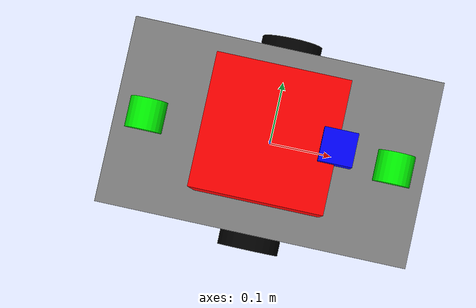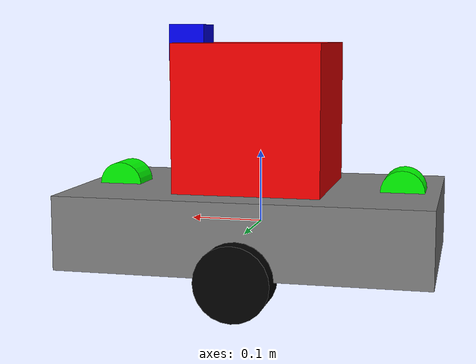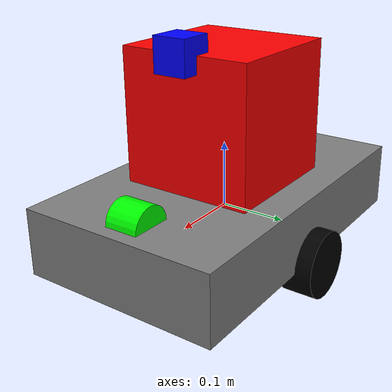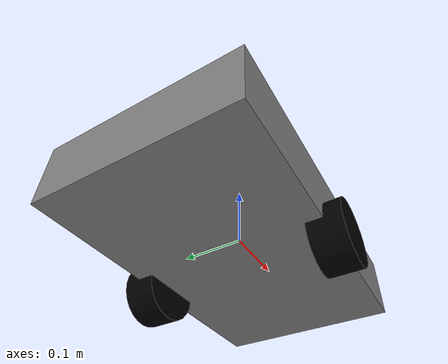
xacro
<?xml version="1.0"?>
<robot xmlns:xacro="http://ros.org/wiki/xacro" name="my_robot">

  <!-- ===================== MATERIALIEN ===================== -->
  <material name="grey">
    <color rgba="0.5 0.5 0.5 1"/>
  </material>

  <material name="blue">
    <color rgba="0 0 1 1"/>
  </material>

  <material name="green">
    <color rgba="0 1 0 1"/>
  </material>

  <material name="black">
    <color rgba="0 0 0 1"/>
  </material>

  <material name="red">
    <color rgba="1 0 0 1"/>
  </material>

  <!-- ===================== BASIS ===================== -->
  <link name="base_link">
    <visual>
      <geometry>
        <box size="0.5 0.3 0.1"/>
      </geometry>
      <material name="grey"/>
    </visual>
    <collision>
      <geometry>
        <box size="0.5 0.3 0.1"/>
      </geometry>
    </collision>
  </link>

  <!-- ===================== TESTBOX ===================== -->
  <link name="test_box_link">
    <visual>
      <geometry>
        <box size="0.2 0.2 0.2"/>
      </geometry>
      <material name="red"/>
    </visual>
  </link>

  <joint name="base_to_test_box" type="fixed">
    <parent link="base_link"/>
    <child link="test_box_link"/>
    <origin xyz="0 0 0.15" rpy="0 0 0"/>
  </joint>

  <!-- ===================== KAMERA ===================== -->
  <link name="camera_link">
    <visual>
      <geometry>
        <box size="0.05 0.05 0.05"/>
      </geometry>
      <material name="blue"/>
    </visual>
  </link>

  <joint name="base_to_camera" type="fixed">
    <parent link="base_link"/>
    <child link="camera_link"/>
    <origin xyz="0.1 0.0 0.25" rpy="1.5708 0 0"/>
  </joint>

  <!-- ===================== LIDAR FRONT ===================== -->
  <link name="lidar_front_link">
    <visual>
      <geometry>
        <cylinder length="0.05" radius="0.03"/>
      </geometry>
      <material name="green"/>
    </visual>
  </link>

  <joint name="base_to_lidar_front" type="fixed">
    <parent link="base_link"/>
    <child link="lidar_front_link"/>
    <origin xyz="0.2 0.0 0.05" rpy="1.5708 0 0"/>
  </joint>

  <!-- ===================== LIDAR BACK ===================== -->
  <link name="lidar_back_link">
    <visual>
      <geometry>
        <cylinder length="0.05" radius="0.03"/>
      </geometry>
      <material name="green"/>
    </visual>
  </link>

  <joint name="base_to_lidar_back" type="fixed">
    <parent link="base_link"/>
    <child link="lidar_back_link"/>
    <origin xyz="-0.2 0.0 0.05" rpy="1.5708 0 0"/>
  </joint>

  <!-- ===================== RÄDER ===================== -->
  <link name="wheel_left_link">
    <visual>
      <geometry>
        <cylinder length="0.05" radius="0.05"/>
      </geometry>
      <material name="black"/>
    </visual>
  </link>

  <joint name="base_to_wheel_left" type="fixed">
    <parent link="base_link"/>
    <child link="wheel_left_link"/>
    <origin xyz="0 -0.15 -0.05" rpy="1.5708 0 0"/>
  </joint>

  <link name="wheel_right_link">
    <visual>
      <geometry>
        <cylinder length="0.05" radius="0.05"/>
      </geometry>
      <material name="black"/>
    </visual>
  </link>

  <joint name="base_to_wheel_right" type="fixed">
    <parent link="base_link"/>
    <child link="wheel_right_link"/>
    <origin xyz="0 0.15 -0.05" rpy="1.5708 0 0"/>
  </joint>

</robot>
